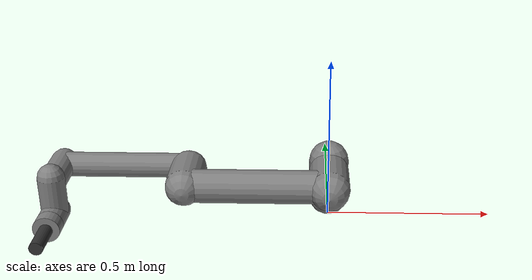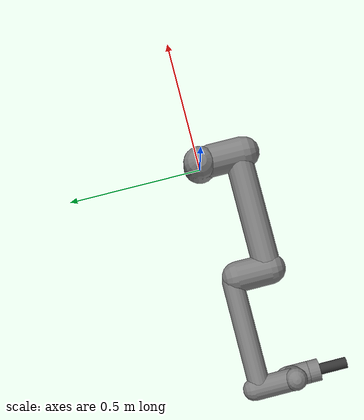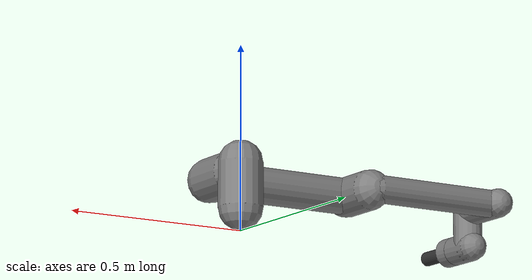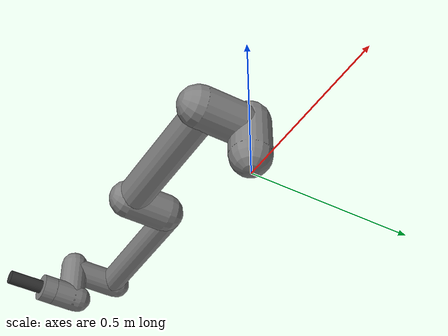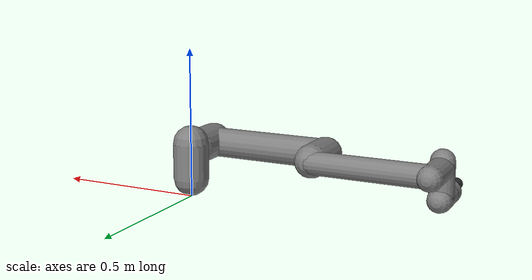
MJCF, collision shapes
<mujoco model="ur5e">
  <compiler autolimits="true" angle="radian"/>
  <option integrator="implicitfast"/>
  <default>
    <default class="/">
      <default class="ur5e">
        <material specular="0.5" shininess="0.25"/>
        <joint axis="0 1 0" range="-6.2831900000000003 6.2831900000000003" armature="0.10000000000000001"/>
        <site group="4" rgba="0.5 0.5 0.5 0.29999999999999999" size="0.001"/>
        <general ctrlrange="-6.2831000000000001 6.2831000000000001" forcerange="-150 150" gaintype="fixed" biastype="affine" gainprm="2000" biasprm="0 -2000 -400"/>
        <default class="size3">
          <default class="size3_limited">
            <joint range="-3.1415000000000002 3.1415000000000002"/>
            <general ctrlrange="-3.1415000000000002 3.1415000000000002"/>
          </default>
        </default>
        <default class="size1">
          <general forcerange="-28 28" gainprm="500" biasprm="0 -500 -100"/>
        </default>
        <default class="visual">
          <geom type="mesh" contype="0" conaffinity="0" group="2"/>
        </default>
        <default class="collision">
          <geom type="capsule" group="3"/>
          <default class="eef_collision">
            <geom type="cylinder"/>
          </default>
        </default>
      </default>
    </default>
    <default class="unnamed_model/"/>
  </default>
  <asset>
    <material name="black" class="ur5e" rgba="0.033000000000000002 0.033000000000000002 0.033000000000000002 1"/>
    <material name="jointgray" class="ur5e" rgba="0.27800000000000002 0.27800000000000002 0.27800000000000002 1"/>
    <material name="linkgray" class="ur5e" rgba="0.81999999999999995 0.81999999999999995 0.81999999999999995 1"/>
    <material name="urblue" class="ur5e" rgba="0.48999999999999999 0.67800000000000005 0.80000000000000004 1"/>
    <mesh name="base_0" class="/" file="base_0-d5328a99917358d9aa384f12743fe73698461d1c.obj"/>
    <mesh name="base_1" class="/" file="base_1-d1c667ae5f87b9c900fdeadad850205153846396.obj"/>
    <mesh name="shoulder_0" class="/" file="shoulder_0-89051b80580d45ef39cb220bf068742b01770552.obj"/>
    <mesh name="shoulder_1" class="/" file="shoulder_1-50ba15e82459989cf7f17cba7b1aafbca2781206.obj"/>
    <mesh name="shoulder_2" class="/" file="shoulder_2-29ad171bec79e2912abb81d250aaf5ff9a67bc60.obj"/>
    <mesh name="upperarm_0" class="/" file="upperarm_0-16bfdf8d1b19d35ef0adbc4cf29ab0c7edb62dcf.obj"/>
    <mesh name="upperarm_1" class="/" file="upperarm_1-c53724435bec35e1b608145457af767b038f4fd1.obj"/>
    <mesh name="upperarm_2" class="/" file="upperarm_2-199e0d0c1baa55a078742ed298800ff26d072c09.obj"/>
    <mesh name="upperarm_3" class="/" file="upperarm_3-62f2bba935d9ab94800a49bcb6ede7b0fa9dd071.obj"/>
    <mesh name="forearm_0" class="/" file="forearm_0-7994229075bdd0e4a5c860ca174278ee8eda8229.obj"/>
    <mesh name="forearm_1" class="/" file="forearm_1-c72848167eef89e0d9801ddd7da516e7e878776e.obj"/>
    <mesh name="forearm_2" class="/" file="forearm_2-3a33518f421ed893ff9b0d759af07b0e5900e78c.obj"/>
    <mesh name="forearm_3" class="/" file="forearm_3-54cad2556a94cdda04a7cef5c84554a7d9f3ab03.obj"/>
    <mesh name="wrist1_0" class="/" file="wrist1_0-6876ccb9d0084054268dd6aec007e5a61aea6c2d.obj"/>
    <mesh name="wrist1_1" class="/" file="wrist1_1-0f7e6640a9dfb98e58078997f5f82bd433879387.obj"/>
    <mesh name="wrist1_2" class="/" file="wrist1_2-3f6dcae8c736e2c42db3746db7f24ac4516aaca7.obj"/>
    <mesh name="wrist2_0" class="/" file="wrist2_0-fdb3f7bc360f8f37f6be6270c8b507291dc9b01c.obj"/>
    <mesh name="wrist2_1" class="/" file="wrist2_1-258ca475798c530d954723dc29f3d67086ead0d9.obj"/>
    <mesh name="wrist2_2" class="/" file="wrist2_2-c6734971531db7f2f09e746377aa9faccb69b192.obj"/>
    <mesh name="wrist3" class="/" file="wrist3-a1fffb4f599e121fb18be40e087b6fd7fb164e59.obj"/>
  </asset>
  <worldbody>
    <light name="spotlight" class="/" mode="targetbodycom" target="wrist_2_link" pos="0 -1 2"/>
    <body name="base" childclass="ur5e" quat="0 0 0 -1" gravcomp="1">
      <inertial pos="0 0 0" mass="4" diaginertia="0.0044333315599999999 0.0044333315599999999 0.0071999999999999998"/>
      <geom name="//unnamed_geom_0" class="visual" material="black" mesh="base_0"/>
      <geom name="//unnamed_geom_1" class="visual" material="jointgray" mesh="base_1"/>
      <body name="shoulder_link" pos="0 0 0.16300000000000001" gravcomp="1">
        <inertial pos="0 0 0" mass="3.7000000000000002" diaginertia="0.010267500000000001 0.010267500000000001 0.0066600000000000001"/>
        <joint name="shoulder_pan_joint" class="size3" axis="0 0 1"/>
        <geom name="//unnamed_geom_2" class="visual" material="urblue" mesh="shoulder_0"/>
        <geom name="//unnamed_geom_3" class="visual" material="black" mesh="shoulder_1"/>
        <geom name="//unnamed_geom_4" class="visual" material="jointgray" mesh="shoulder_2"/>
        <geom name="//unnamed_geom_5" class="collision" size="0.059999999999999998 0.059999999999999998" pos="0 0 -0.040000000000000001"/>
        <body name="upper_arm_link" pos="0 0.13800000000000001 0" quat="1 0 1 0" gravcomp="1">
          <inertial pos="0 0 0.21249999999999999" mass="8.3930000000000007" diaginertia="0.13388600000000001 0.13388600000000001 0.0151074"/>
          <joint name="shoulder_lift_joint" class="size3"/>
          <geom name="//unnamed_geom_6" class="visual" material="linkgray" mesh="upperarm_0"/>
          <geom name="//unnamed_geom_7" class="visual" material="black" mesh="upperarm_1"/>
          <geom name="//unnamed_geom_8" class="visual" material="jointgray" mesh="upperarm_2"/>
          <geom name="//unnamed_geom_9" class="visual" material="urblue" mesh="upperarm_3"/>
          <geom name="//unnamed_geom_10" class="collision" size="0.059999999999999998 0.059999999999999998" pos="0 -0.040000000000000001 0" quat="1 1 0 0"/>
          <geom name="//unnamed_geom_11" class="collision" size="0.050000000000000003 0.20000000000000001" pos="0 0 0.20000000000000001"/>
          <body name="forearm_link" pos="0 -0.13100000000000001 0.42499999999999999" gravcomp="1">
            <inertial pos="0 0 0.19600000000000001" mass="2.2749999999999999" diaginertia="0.031179599999999998 0.031179599999999998 0.0040949999999999997"/>
            <joint name="elbow_joint" class="size3_limited"/>
            <geom name="//unnamed_geom_12" class="visual" material="urblue" mesh="forearm_0"/>
            <geom name="//unnamed_geom_13" class="visual" material="linkgray" mesh="forearm_1"/>
            <geom name="//unnamed_geom_14" class="visual" material="black" mesh="forearm_2"/>
            <geom name="//unnamed_geom_15" class="visual" material="jointgray" mesh="forearm_3"/>
            <geom name="//unnamed_geom_16" class="collision" size="0.055 0.059999999999999998" pos="0 0.080000000000000002 0" quat="1 1 0 0"/>
            <geom name="//unnamed_geom_17" class="collision" size="0.037999999999999999 0.19" pos="0 0 0.20000000000000001"/>
            <body name="wrist_1_link" pos="0 0 0.39200000000000002" quat="1 0 1 0" gravcomp="1">
              <inertial pos="0 0.127 0" mass="1.2190000000000001" diaginertia="0.0025598999999999999 0.0025598999999999999 0.0021941999999999999"/>
              <joint name="wrist_1_joint" class="size1"/>
              <geom name="//unnamed_geom_18" class="visual" material="black" mesh="wrist1_0"/>
              <geom name="//unnamed_geom_19" class="visual" material="urblue" mesh="wrist1_1"/>
              <geom name="//unnamed_geom_20" class="visual" material="jointgray" mesh="wrist1_2"/>
              <geom name="//unnamed_geom_21" class="collision" size="0.040000000000000001 0.070000000000000007" pos="0 0.050000000000000003 0" quat="1 1 0 0"/>
              <body name="wrist_2_link" pos="0 0.127 0" gravcomp="1">
                <inertial pos="0 0 0.10000000000000001" mass="1.2190000000000001" diaginertia="0.0025598999999999999 0.0025598999999999999 0.0021941999999999999"/>
                <joint name="wrist_2_joint" class="size1" axis="0 0 1"/>
                <geom name="//unnamed_geom_22" class="visual" material="black" mesh="wrist2_0"/>
                <geom name="//unnamed_geom_23" class="visual" material="urblue" mesh="wrist2_1"/>
                <geom name="//unnamed_geom_24" class="visual" material="jointgray" mesh="wrist2_2"/>
                <geom name="//unnamed_geom_25" class="collision" size="0.040000000000000001 0.059999999999999998" pos="0 0 0.040000000000000001"/>
                <geom name="//unnamed_geom_26" class="collision" size="0.040000000000000001 0.040000000000000001" pos="0 0.02 0.10000000000000001" quat="1 1 0 0"/>
                <body name="wrist_3_link" pos="0 0 0.10000000000000001" gravcomp="1">
                  <inertial pos="0 0.077168299999999995 0" quat="1 0 0 1" mass="0.18890000000000001" diaginertia="0.00013213400000000001 9.90863e-05 9.90863e-05"/>
                  <joint name="wrist_3_joint" class="size1"/>
                  <geom name="//unnamed_geom_27" class="visual" material="linkgray" mesh="wrist3"/>
                  <geom name="//unnamed_geom_28" class="eef_collision" size="0.040000000000000001 0.02" pos="0 0.080000000000000002 0" quat="1 1 0 0"/>
                  <site name="attachment_site" pos="0 0.10000000000000001 0" quat="-1 1 0 0"/>
                  <body pos="0 0.10000000000000001 0" quat="-1 1 0 0" name="unnamed_model/">
                    <geom name="unnamed_model/cylinder-EEF" class="unnamed_model/" type="cylinder" size="0.02 0.050000000000000003" rgba="0.20000000000000001 0.20000000000000001 0.20000000000000001 1" mass="0.10000000000000001" pos="0 0 0.051000000000000004"/>
                  </body>
                </body>
              </body>
            </body>
          </body>
        </body>
      </body>
    </body>
  </worldbody>
  <actuator>
    <general name="shoulder_pan" class="size3" joint="shoulder_pan_joint"/>
    <general name="shoulder_lift" class="size3" joint="shoulder_lift_joint"/>
    <general name="elbow" class="size3_limited" joint="elbow_joint"/>
    <general name="wrist_1" class="size1" joint="wrist_1_joint"/>
    <general name="wrist_2" class="size1" joint="wrist_2_joint"/>
    <general name="wrist_3" class="size1" joint="wrist_3_joint"/>
  </actuator>
</mujoco>
